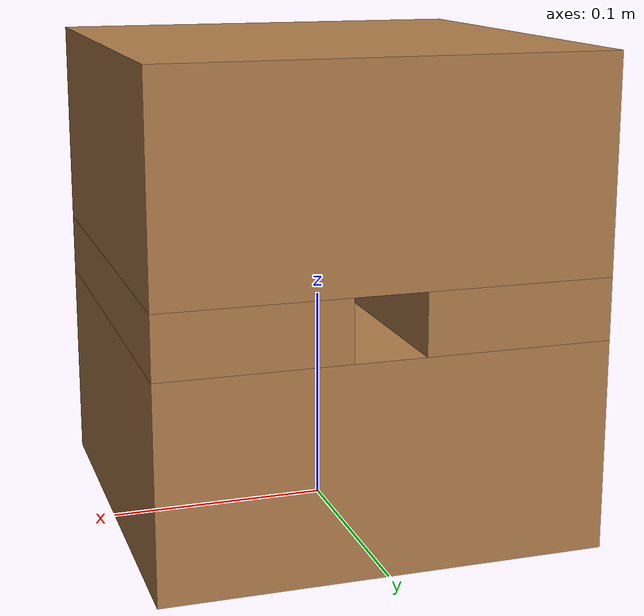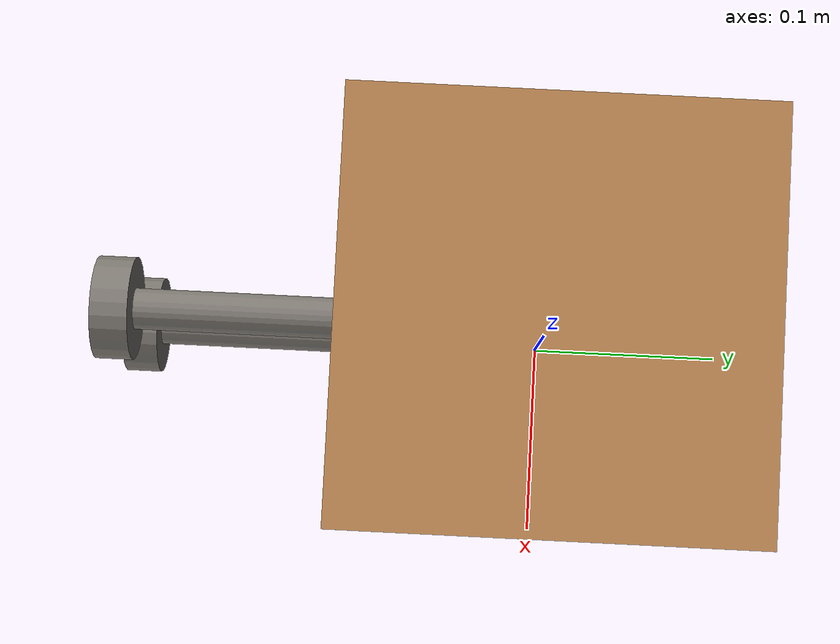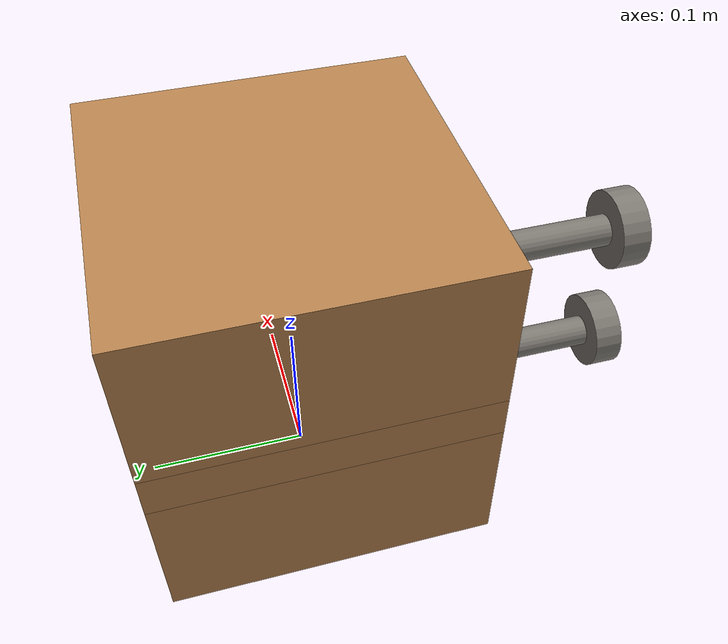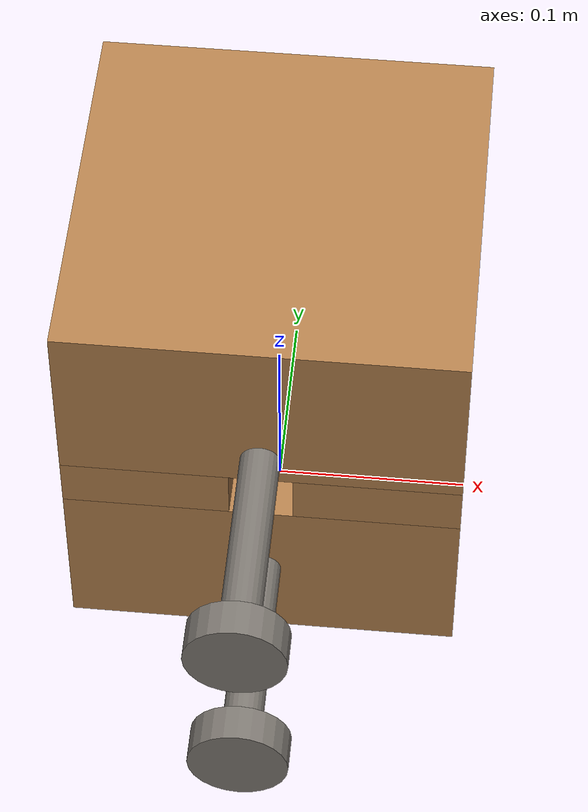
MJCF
<mujoco model="hammerblock">
    <compiler angle="radian" inertiafromgeom="auto" inertiagrouprange="4 5"/>
    <asset>
        <texture name="T_hmr_met" type="cube" file="textures/metal1.png"/>
        <texture name="T_hmr_wood" type="cube" file="textures/wood1.png"/>

        <material name="hmr_col" texture="T_hmr_wood" reflectance="0.7" texrepeat="5 5" texuniform="true"/>
        <material name="hmr_red" rgba=".65 0 0 1" shininess="1" reflectance=".7" specular=".5"/>
        <material name="hmr_metal" texture="T_hmr_met" rgba=".65 .65 .65 1" shininess="1" reflectance=".7"
                  specular=".5"/>
        <material name="hmr_wood" texture="T_hmr_wood" shininess="1" reflectance=".7" specular=".5"/>
        <mesh file="meshes/hammer/hammerblock.stl" name="hammerblock"/>
        <mesh file="meshes/hammer/nail.stl" name="nail"/>
        <mesh file="meshes/hammer/hammerhandle.stl" name="hammerhandle"/>
    </asset>
    <default>

        <default class="hmr_base">
            <joint armature="0.001" damping="2" limited="true"/>
            <geom conaffinity="0" contype="0" group="1" type="mesh"/>
            <position ctrllimited="true" ctrlrange="0 1.57"/>
            <default class="hmr_viz">
                <geom condim="4" type="mesh"/>
            </default>
            <default class="hmr_col">
                <geom conaffinity="1" condim="3" contype="1" group="1" material="hmr_col" solimp="0.99 0.99 0.01"
                      solref="0.01 1"/>
            </default>
        </default>
    </default>

    <worldbody>
        <body childclass="hmr_base">
            <body name="object">
                <geom class="hmr_col" pos="0 0 0.172" size="0.1 0.1 0.048" type="box"/>
                <geom class="hmr_col" pos="0.058 0 0.11" size="0.042 0.1 0.014" type="box"/>
                <geom class="hmr_col" pos="-0.058 0 0.11" size="0.042 0.1 0.014" type="box"/>
                <geom class="hmr_col" pos="0 0 0.048" size="0.1 0.1 0.048" type="box"/>
                <body name="nail_link_1" pos="0 -0.21 0.05">
                    <joint type="slide" axis="0 1 0" range="0 .05" name="NailSlideJoint_1" damping="2"/>
                    <geom class="hmr_col" euler="1.57 0 0" pos="0.0 0.057 0" size="0.01 0.06" type="cylinder" material="hmr_metal"/>
                    <geom class="hmr_col" euler="1.57 0 0" size="0.025 0.009" type="cylinder" material="hmr_metal"/>
                </body>
                <body name="nail_link_2" pos="0 -0.21 0.14">
                    <joint type="slide" axis="0 1 0" range="0 .05" name="NailSlideJoint_2" damping="2"/>
                    <geom class="hmr_col" euler="1.57 0 0" pos="0.0 0.057 0" size="0.01 0.06" type="cylinder" material="hmr_metal"/>
                    <geom class="hmr_col" euler="1.57 0 0" size="0.025 0.009" type="cylinder" material="hmr_metal"/>
                </body>
            </body>
            <site rgba="0 0 0 0" size="0.0005" pos="0 0 -0.08" name="bottom_site"/>
            <site rgba="0 0 0 0" size="0.0005" pos="0 0 0.65" name="top_site"/>
            <site rgba="0 0 0 0" size="0.0005" pos="0.011 0.09 0" name="horizontal_radius_site"/>
        </body>
    </worldbody>
</mujoco>
